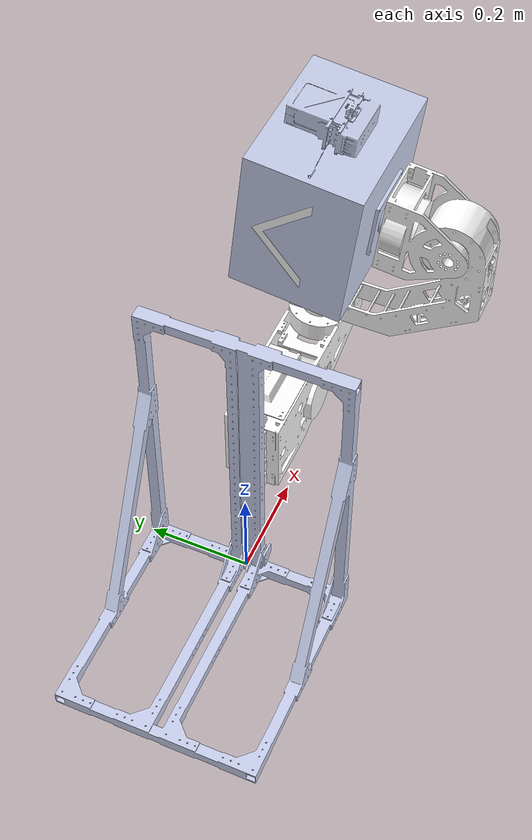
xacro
<?xml version="1.0"?>
<robot xmlns:xacro="http://www.ros.org/wiki/xacro" name="exchanger">
    <xacro:arg name="initial_positions_file" default="initial_positions.yaml" />

    <!-- Import exchanger urdf file -->
    <xacro:include filename="$(find exchanger)/urdf/exchanger.urdf" />

    <!-- Import control_xacro -->
    <xacro:include filename="exchanger.ros2_control.xacro" />

    <xacro:exchanger_ros2_control name="FakeSystem" initial_positions_file="$(arg initial_positions_file)"/>

</robot>

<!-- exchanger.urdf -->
<robot
  name="exchanger">
  <link
    name="base_link">
    <inertial>
      <origin
        xyz="-0.065998 9.3269E-10 0.20062"
        rpy="0 0 0" />
      <mass
        value="50.0" />
      <inertia
        ixx="0.063324"
        ixy="-1.8684E-11"
        ixz="-0.014803"
        iyy="0.065259"
        iyz="-1.8236E-10"
        izz="0.032272" />
    </inertial>
    <visual>
      <origin
        xyz="0 0 0"
        rpy="0 0 0" />
      <geometry>
        <mesh
          filename="package://exchanger/meshes/base_link.STL" />
      </geometry>
      <material
        name="">
        <color
          rgba="0.79216 0.81961 0.93333 1" />
      </material>
    </visual>
    <collision>
      <origin
        xyz="0 0 0"
        rpy="0 0 0" />
      <geometry>
        <mesh
          filename="package://exchanger/meshes/base_link.STL" />
      </geometry>
    </collision>
  </link>
  <link
    name="link1">
    <inertial>
      <origin
        xyz="0.213392772330689 -0.00509704860214999 0.337580740890942"
        rpy="0 0 0" />
      <mass
        value="2.282915007069" />
      <inertia
        ixx="0.00604091937731786"
        ixy="-0.000147578128070759"
        ixz="-0.00426644299116084"
        iyy="0.0297290495324142"
        iyz="-0.000235437861235942"
        izz="0.0287485987459996" />
    </inertial>
    <visual>
      <origin
        xyz="0 0 0"
        rpy="0 0 0" />
      <geometry>
        <mesh
          filename="package://exchanger/meshes/link1.STL" />
      </geometry>
      <material
        name="">
        <color
          rgba="1 1 1 1" />
      </material>
    </visual>
    <collision>
      <origin
        xyz="0 0 0"
        rpy="0 0 0" />
      <geometry>
        <mesh
          filename="package://exchanger/meshes/link1.STL" />
      </geometry>
    </collision>
  </link>
  <joint
    name="joint1"
    type="fixed">
    <origin
      xyz="0 0 0"
      rpy="0 0 0" />
    <parent
      link="base_link" />
    <child
      link="link1" />
    <axis
      xyz="-1 0 0" />

  </joint>
  <link
    name="link2">
    <inertial>
      <origin
        xyz="-0.208589064287454 0.215241777117513 -0.00833768913833344"
        rpy="0 0 0" />
      <mass
        value="1.07795923923666" />
      <inertia
        ixx="0.0111831635668634"
        ixy="0.00712858312659892"
        ixz="-0.00028157173374696"
        iyy="0.00905404013684289"
        iyz="0.000369124478139303"
        izz="0.01898068372233" />
    </inertial>
    <visual>
      <origin
        xyz="0 0 0"
        rpy="0 0 0" />
      <geometry>
        <mesh
          filename="package://exchanger/meshes/link2.STL" />
      </geometry>
      <material
        name="">
        <color
          rgba="1 1 1 1" />
      </material>
    </visual>
    <collision>
      <origin
        xyz="0 0 0"
        rpy="0 0 0" />
      <geometry>
        <mesh
          filename="package://exchanger/meshes/link2.STL" />
      </geometry>
    </collision>
  </link>
  <joint
    name="joint2"
    type="fixed">
    <origin
      xyz="0.347 0 0.37693"
      rpy="1.6041 0 1.5708" />
    <parent
      link="link1" />
    <child
      link="link2" />
    <axis
      xyz="0 0.99944 -0.033315" />
    <limit
      lower="-0.6001"
      upper="5.0001"
      effort="100.0"
      velocity="1.0" />
  </joint>
  <link
    name="link3">
    <inertial>
      <origin
        xyz="0.00737253732271576 -0.00155423544896682 -0.0886581909320671"
        rpy="0 0 0" />
      <mass
        value="1.69536995651735" />
      <inertia
        ixx="0.00265498106240398"
        ixy="7.93762619937815E-06"
        ixz="-9.44494125806837E-05"
        iyy="0.00267314045360387"
        iyz="-7.12046867822945E-05"
        izz="0.00349171316882647" />
    </inertial>
    <visual>
      <origin
        xyz="0 0 0"
        rpy="0 0 0" />
      <geometry>
        <mesh
          filename="package://exchanger/meshes/link3.STL" />
      </geometry>
      <material
        name="">
        <color
          rgba="1 1 1 1" />
      </material>
    </visual>
    <collision>
      <origin
        xyz="0 0 0"
        rpy="0 0 0" />
      <geometry>
        <mesh
          filename="package://exchanger/meshes/link3.STL" />
      </geometry>
    </collision>
  </link>
  <joint
    name="joint3"
    type="fixed">
    <origin
      xyz="-0.2437 0.28072 -0.013034"
      rpy="-1.5766 0.033321 1.5708" />
    <parent
      link="link2" />
    <child
      link="link3" />
    <axis
      xyz="0 -1 0" />
    <limit
      lower="-3.5001"
      upper="0.20001"
      effort="100.0"
      velocity="1.0" />
  </joint>
  <link
    name="link4">
    <inertial>
      <origin
        xyz="0.00998632280169748 -0.136133560948424 -0.000593583314559387"
        rpy="0 0 0" />
      <mass
        value="6.13598300943169" />
      <inertia
        ixx="0.0863697510908788"
        ixy="-2.18576836205284E-08"
        ixz="-4.24054059390386E-08"
        iyy="0.12776437696811"
        iyz="2.77605781266973E-06"
        izz="0.0868978590764911" />
    </inertial>
    <visual>
      <origin
        xyz="0 0 0"
        rpy="0 0 0" />
      <geometry>
        <mesh
          filename="package://exchanger/meshes/link4.STL" />
      </geometry>
      <material
        name="">
        <color
          rgba="0.792156862745098 0.819607843137255 0.933333333333333 1" />
      </material>
    </visual>
    <collision>
      <origin
        xyz="0 0 0"
        rpy="0 0 0" />
      <geometry>
        <mesh
          filename="package://exchanger/meshes/link4.STL" />
      </geometry>
    </collision>
  </link>
  <joint
    name="joint4"
    type="fixed">
    <origin
      xyz="0.008608 -0.002268 -0.099741"
      rpy="1.5708 -0.11102 0" />
    <parent
      link="link3" />
    <child
      link="link4" />
    <axis
      xyz="0 -1 0" />
    <limit
      lower="-1.0"
      upper="1.0"
      effort="100.0"
      velocity="1.0" />
  </joint>
  <link
    name="link_li">
    <inertial>
      <origin
        xyz="-0.0025912020847621 -0.19202499574442 0.00228329049728504"
        rpy="0 0 0" />
      <mass
        value="0.0113454683183758" />
      <inertia
        ixx="5.91223776855283E-06"
        ixy="9.45139765567244E-08"
        ixz="1.01549764761384E-07"
        iyy="2.20403296645694E-05"
        iyz="-2.18532486063889E-18"
        izz="2.66145928124362E-05" />
    </inertial>
    <visual>
      <origin
        xyz="0 0 0"
        rpy="0 0 0" />
      <geometry>
        <mesh
          filename="package://exchanger/meshes/link_li.STL" />
      </geometry>
      <material
        name="">
        <color
          rgba="1 1 1 1" />
      </material>
    </visual>
    <collision>
      <origin
        xyz="0 0 0"
        rpy="0 0 0" />
      <geometry>
        <mesh
          filename="package://exchanger/meshes/link_li.STL" />
      </geometry>
    </collision>
  </link>
  <joint
    name="joint_li"
    type="fixed">
    <origin
      xyz="0 0 0"
      rpy="0 0 0" />
    <parent
      link="link4" />
    <child
      link="link_li" />
    <axis
      xyz="0 0 0" />
  </joint>

  <gazebo reference="base_link">
      <material>Gazebo/Gray</material>
      <gravity>true</gravity>
      <selfCollide>true</selfCollide>
  </gazebo>
  <gazebo reference="link1">
      <material>Gazebo/Gray</material>
      <selfCollide>false</selfCollide>
  </gazebo>
  <gazebo reference="link2">
      <material>Gazebo/Gray</material>
  </gazebo>
  <gazebo reference="link3">
      <material>Gazebo/Gray</material>
  </gazebo>
  <gazebo reference="link4">
      <material>Gazebo/Black</material>
  </gazebo>
  <gazebo reference="link_li">
      <material>Gazebo/Red</material>
  </gazebo>
</robot>
